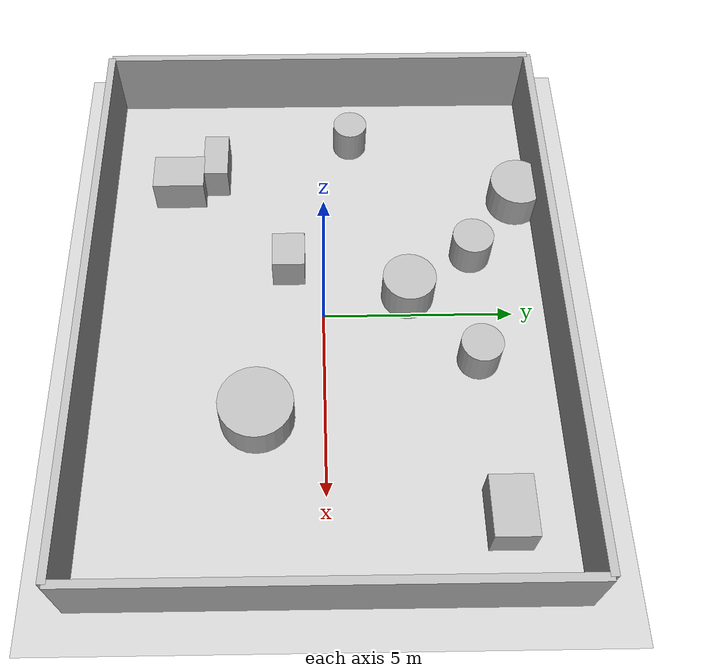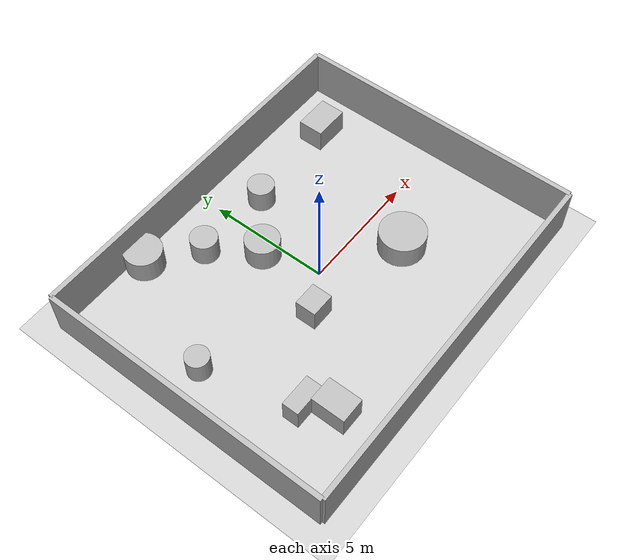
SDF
<?xml version="1.0"?>
<sdf version="1.6">
  <world name="env_12">

    <include><uri>model://ground_plane</uri></include>
    <include><uri>model://sun</uri></include>

    <!-- WALLS -->
    <model name="wall_north"><static>true</static><pose>0 5.9831763563887455 1 0 0 0</pose>
      <link name="link"><collision name="collision">
        <geometry><box><size>15.086844474756676 0.2 2</size></box></geometry>
      </collision><visual name="visual">
        <geometry><box><size>15.086844474756676 0.2 2</size></box></geometry>
      </visual></link>
    </model>

    <model name="wall_south"><static>true</static><pose>0 -5.9831763563887455 1 0 0 0</pose>
      <link name="link"><collision name="collision">
        <geometry><box><size>15.086844474756676 0.2 2</size></box></geometry>
      </collision><visual name="visual">
        <geometry><box><size>15.086844474756676 0.2 2</size></box></geometry>
      </visual></link>
    </model>

    <model name="wall_east"><static>true</static><pose>7.543422237378338 0 1 0 0 1.57</pose>
      <link name="link"><collision name="collision">
        <geometry><box><size>11.966352712777491 0.2 2</size></box></geometry>
      </collision><visual name="visual">
        <geometry><box><size>11.966352712777491 0.2 2</size></box></geometry>
      </visual></link>
    </model>

    <model name="wall_west"><static>true</static><pose>-7.543422237378338 0 1 0 0 1.57</pose>
      <link name="link"><collision name="collision">
        <geometry><box><size>11.966352712777491 0.2 2</size></box></geometry>
      </collision><visual name="visual">
        <geometry><box><size>11.966352712777491 0.2 2</size></box></geometry>
      </visual></link>
    </model>

    <!-- SENSOR -->

    <model name="lidar_sensor">
      <static>true</static>
      <pose>3.3147023374954374 4.916697082655332 0.4 0 0 0</pose>
      <link name="link">
        <sensor name="lidar" type="ray">
          <pose>0 0 0 0 0 0</pose>
          <visualize>true</visualize>
          <always_on>true</always_on>
          <update_rate>10</update_rate>
          <ray>
            <scan><horizontal>
              <samples>90</samples>
              <resolution>1</resolution>
              <min_angle>-3.14159</min_angle>
              <max_angle>3.14159</max_angle>
            </horizontal></scan>
            <range><min>0.15</min><max>20.0</max><resolution>0.01</resolution></range>
          </ray>
          <plugin name="lidar_plugin" filename="liblidar_plugin.so"/>
        </sensor>
      </link>
    </model>

    <!-- OBSTACLES -->

    <model name="obstacle_0">
      <static>true</static>
      <pose>-3.6859829503251516 5.457891501904586 0.5 0 0 0</pose>
      <link name="link">
        <collision name="collision">
          <geometry><cylinder><radius>0.76</radius><length>1.0</length></cylinder></geometry>
        </collision>
        <visual name="visual">
          <geometry><cylinder><radius>0.76</radius><length>1.0</length></cylinder></geometry>
        </visual>
      </link>
    </model>

    <model name="obstacle_1">
      <static>true</static>
      <pose>-1.8763045446380957 4.042718629246486 0.5 0 0 0</pose>
      <link name="link">
        <collision name="collision">
          <geometry><cylinder><radius>0.55</radius><length>1.0</length></cylinder></geometry>
        </collision>
        <visual name="visual">
          <geometry><cylinder><radius>0.55</radius><length>1.0</length></cylinder></geometry>
        </visual>
      </link>
    </model>

    <model name="obstacle_2">
      <static>true</static>
      <pose>1.3834623957697163 3.9720308933821604 0.5 0 0 0</pose>
      <link name="link">
        <collision name="collision">
          <geometry><cylinder><radius>0.54</radius><length>1.0</length></cylinder></geometry>
        </collision>
        <visual name="visual">
          <geometry><cylinder><radius>0.54</radius><length>1.0</length></cylinder></geometry>
        </visual>
      </link>
    </model>

    <model name="obstacle_3">
      <static>true</static>
      <pose>2.934120264968148 -1.6924233150871855 0.5 0 0 0</pose>
      <link name="link">
        <collision name="collision">
          <geometry><cylinder><radius>0.94</radius><length>1.0</length></cylinder></geometry>
        </collision>
        <visual name="visual">
          <geometry><cylinder><radius>0.94</radius><length>1.0</length></cylinder></geometry>
        </visual>
      </link>
    </model>

    <model name="obstacle_4">
      <static>true</static>
      <pose>-0.5946661159957696 2.256462254395121 0.5 0 0 0</pose>
      <link name="link">
        <collision name="collision">
          <geometry><cylinder><radius>0.7</radius><length>1.0</length></cylinder></geometry>
        </collision>
        <visual name="visual">
          <geometry><cylinder><radius>0.7</radius><length>1.0</length></cylinder></geometry>
        </visual>
      </link>
    </model>

    <model name="obstacle_5">
      <static>true</static>
      <pose>-4.175546881722078 -3.974767185403306 0.5 0 0 0</pose>
      <link name="link">
        <collision name="collision">
          <geometry><box><size>1.03 1.4 1.0</size></box></geometry>
        </collision>
        <visual name="visual">
          <geometry><box><size>1.03 1.4 1.0</size></box></geometry>
        </visual>
      </link>
    </model>

    <model name="obstacle_6">
      <static>true</static>
      <pose>5.612323373474706 4.266870206165737 0.5 0 0 0</pose>
      <link name="link">
        <collision name="collision">
          <geometry><box><size>1.49 1.06 1.0</size></box></geometry>
        </collision>
        <visual name="visual">
          <geometry><box><size>1.49 1.06 1.0</size></box></geometry>
        </visual>
      </link>
    </model>

    <model name="obstacle_7">
      <static>true</static>
      <pose>-1.5140607750101873 -0.9141385922132237 0.5 0 0 0</pose>
      <link name="link">
        <collision name="collision">
          <geometry><box><size>1.0 0.86 1.0</size></box></geometry>
        </collision>
        <visual name="visual">
          <geometry><box><size>1.0 0.86 1.0</size></box></geometry>
        </visual>
      </link>
    </model>

    <model name="obstacle_8">
      <static>true</static>
      <pose>-5.824117619902134 0.8448761086348062 0.5 0 0 0</pose>
      <link name="link">
        <collision name="collision">
          <geometry><cylinder><radius>0.47</radius><length>1.0</length></cylinder></geometry>
        </collision>
        <visual name="visual">
          <geometry><cylinder><radius>0.47</radius><length>1.0</length></cylinder></geometry>
        </visual>
      </link>
    </model>

    <model name="obstacle_9">
      <static>true</static>
      <pose>-4.753498656793068 -2.9608734384982274 0.5 0 0 0</pose>
      <link name="link">
        <collision name="collision">
          <geometry><box><size>1.34 0.68 1.0</size></box></geometry>
        </collision>
        <visual name="visual">
          <geometry><box><size>1.34 0.68 1.0</size></box></geometry>
        </visual>
      </link>
    </model>

  </world>
</sdf>
